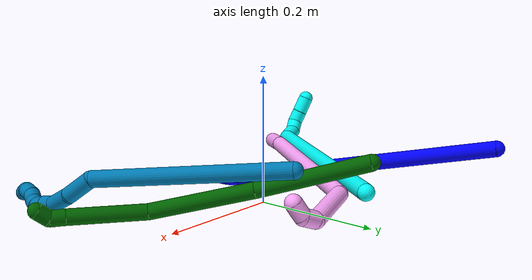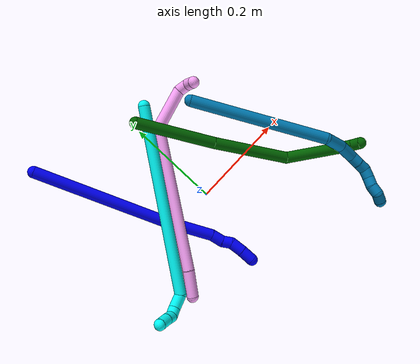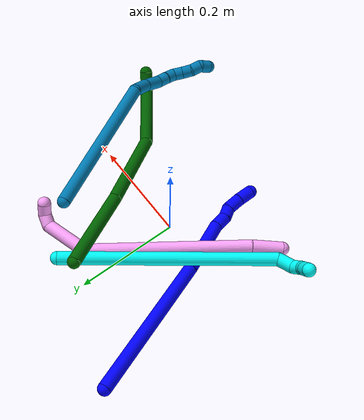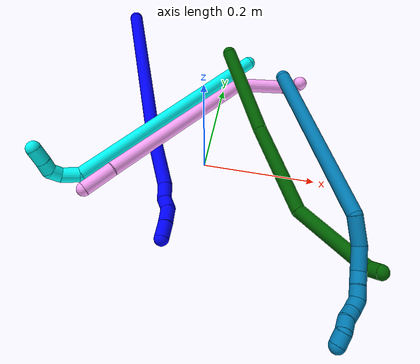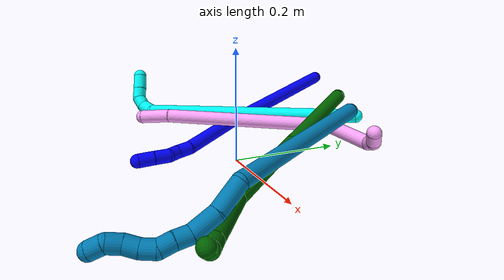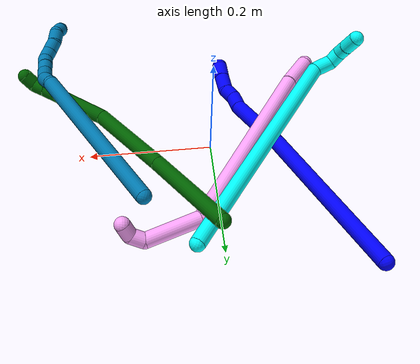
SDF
<sdf version="1.7">
 <world name="default">
  <model name="photoneo_s_sensor">
   <static>1</static>
   <pose>0 0 2 1.57079 1.57079 3.14159</pose>
   <link name="link">
    <inertial><mass>0.1</mass></inertial>
    <sensor name="sensor" type="depth">
     <update_rate>30</update_rate>
     <camera>
      <horizontal_fov>1.22</horizontal_fov>
      <image><width>1920</width><height>1200</height><format>B8G8R8</format></image>
      <clip><near>0.1</near><far>4</far></clip>
      <depth_camera><output>points</output></depth_camera>
     </camera>
     <plugin name="camera_plugin" filename="libgazebo_ros_depth_camera.so">
      <baseline>0.2</baseline>
      <alwaysOn>1</alwaysOn>
      <updateRate>0.0</updateRate>
      <cameraName>camera_ir</cameraName>
      <imageTopicName>/camera/color/image_raw</imageTopicName>
      <cameraInfoTopicName>/camera/color/camera_info</cameraInfoTopicName>
      <depthImageTopicName>/camera/depth/image_raw</depthImageTopicName>
      <depthImageCameraInfoTopicName>/camera/depth/camera_info</depthImageCameraInfoTopicName>
      <pointCloudTopicName>/camera/depth/points</pointCloudTopicName>
      <frameName>fr_optical</frameName>
      <pointCloudCutoff>0.1</pointCloudCutoff>
      <pointCloudCutoffMax>2.0</pointCloudCutoffMax>
      <distortionK1>0</distortionK1>
      <distortionK2>0</distortionK2>
      <distortionK3>0</distortionK3>
      <distortionT1>0</distortionT1>
      <distortionT2>0</distortionT2>
      <CxPrime>0</CxPrime>
      <Cx>0</Cx>
      <Cy>0</Cy>
      <focalLength>0</focalLength>
      <hackBaseline>0</hackBaseline>
     </plugin>
    </sensor>
   </link>
  </model>
  <model name="bin">
   <static>1</static>
   <link name="bottom">
    <collision name="collision-bottom">
     <pose>0 0 -0.01 0 -0 0</pose>
     <geometry><box><size>0.8 0.6 0.02</size></box></geometry>
     <surface>
      <friction><ode><mu>100</mu><mu2>100</mu2></ode></friction>
      <contact><collide_bitmask>65535</collide_bitmask></contact>
     </surface>
    </collision>
   </link>
   <link name="west_wall">
    <collision name="collision-west_wall">
     <pose>-0.41 0 0.1 0 -0 0</pose>
     <geometry><box><size>0.02 0.6 0.2</size></box></geometry>
     <surface>
      <friction><ode><mu>100</mu><mu2>100</mu2></ode></friction>
      <contact><collide_bitmask>65535</collide_bitmask></contact>
     </surface>
    </collision>
   </link>
   <link name="east_wall">
    <collision name="collision-east_wall">
     <pose>0.41 0 0.1 0 -0 0</pose>
     <geometry><box><size>0.02 0.6 0.2</size></box></geometry>
     <surface>
      <friction><ode><mu>100</mu><mu2>100</mu2></ode></friction>
      <contact><collide_bitmask>65535</collide_bitmask></contact>
     </surface>
    </collision>
   </link>
   <link name="south_wall">
    <collision name="collision-south_wall">
     <pose>0 -0.31 0.1 0 -0 0</pose>
     <geometry><box><size>0.8 0.02 0.2</size></box></geometry>
     <surface>
      <friction><ode><mu>100</mu><mu2>100</mu2></ode></friction>
      <contact><collide_bitmask>65535</collide_bitmask></contact>
     </surface>
    </collision>
   </link>
   <link name="north_wall">
    <collision name="collision-north_wall">
     <pose>0 0.31 0.1 0 -0 0</pose>
     <geometry><box><size>0.8 0.02 0.2</size></box></geometry>
     <surface>
      <friction><ode><mu>100</mu><mu2>100</mu2></ode></friction>
      <contact><collide_bitmask>65535</collide_bitmask></contact>
     </surface>
    </collision>
   </link>
  </model>
  <model name="1">
   <static>0</static>
   <link name="1">
    <collision name="collision-cylinder-e_1_1_4">
     <pose>0.044806 -0.124741 -0.049137 1.94604 0.322525 0.469049</pose>
     <geometry><cylinder><radius>0.0125</radius><length>0.282719</length></cylinder></geometry>
     <surface>
      <friction><ode><mu>1.16</mu><mu2>1.16</mu2><slip1>0</slip1><slip2>0</slip2></ode></friction>
      <contact><ode><kp>1e+06</kp><kd>1</kd><max_vel>0</max_vel><min_depth>0.001</min_depth></ode></contact>
     </surface>
    </collision>
    <visual name="visual-cylinder-e_1_1_4">
     <pose>0.044806 -0.124741 -0.049137 1.94604 0.322525 0.469049</pose>
     <geometry><cylinder><radius>0.0125</radius><length>0.282719</length></cylinder></geometry>
     <material><ambient>0 0 1 1</ambient></material>
    </visual>
    <collision name="collision-cylinder-e_2_4_5">
     <pose>0.107243 -0.297546 -0.121761 2.02534 0.318395 0.503411</pose>
     <geometry><cylinder><radius>0.0125</radius><length>0.112651</length></cylinder></geometry>
     <surface>
      <friction><ode><mu>1.16</mu><mu2>1.16</mu2><slip1>0</slip1><slip2>0</slip2></ode></friction>
      <contact><ode><kp>1e+06</kp><kd>1</kd><max_vel>0</max_vel><min_depth>0.001</min_depth></ode></contact>
     </surface>
    </collision>
    <visual name="visual-cylinder-e_2_4_5">
     <pose>0.107243 -0.297546 -0.121761 2.02534 0.318395 0.503411</pose>
     <geometry><cylinder><radius>0.0125</radius><length>0.112651</length></cylinder></geometry>
     <material><ambient>0 0 1 1</ambient></material>
    </visual>
    <collision name="collision-cylinder-e_3_5_6">
     <pose>0.129277 -0.358056 -0.147484 1.74858 0.334919 0.398872</pose>
     <geometry><cylinder><radius>0.0125</radius><length>0.026782</length></cylinder></geometry>
     <surface>
      <friction><ode><mu>1.16</mu><mu2>1.16</mu2><slip1>0</slip1><slip2>0</slip2></ode></friction>
      <contact><ode><kp>1e+06</kp><kd>1</kd><max_vel>0</max_vel><min_depth>0.001</min_depth></ode></contact>
     </surface>
    </collision>
    <visual name="visual-cylinder-e_3_5_6">
     <pose>0.129277 -0.358056 -0.147484 1.74858 0.334919 0.398872</pose>
     <geometry><cylinder><radius>0.0125</radius><length>0.026782</length></cylinder></geometry>
     <material><ambient>0 0 1 1</ambient></material>
    </visual>
    <collision name="collision-cylinder-e_4_6_7">
     <pose>0.138938 -0.378118 -0.154255 2.10787 0.535561 0.899435</pose>
     <geometry><cylinder><radius>0.0125</radius><length>0.02061</length></cylinder></geometry>
     <surface>
      <friction><ode><mu>1.16</mu><mu2>1.16</mu2><slip1>0</slip1><slip2>0</slip2></ode></friction>
      <contact><ode><kp>1e+06</kp><kd>1</kd><max_vel>0</max_vel><min_depth>0.001</min_depth></ode></contact>
     </surface>
    </collision>
    <visual name="visual-cylinder-e_4_6_7">
     <pose>0.138938 -0.378118 -0.154255 2.10787 0.535561 0.899435</pose>
     <geometry><cylinder><radius>0.0125</radius><length>0.02061</length></cylinder></geometry>
     <material><ambient>0 0 1 1</ambient></material>
    </visual>
    <collision name="collision-cylinder-e_5_7_8">
     <pose>0.150076 -0.398813 -0.159052 1.59088 0.422314 0.430623</pose>
     <geometry><cylinder><radius>0.0125</radius><length>0.028687</length></cylinder></geometry>
     <surface>
      <friction><ode><mu>1.16</mu><mu2>1.16</mu2><slip1>0</slip1><slip2>0</slip2></ode></friction>
      <contact><ode><kp>1e+06</kp><kd>1</kd><max_vel>0</max_vel><min_depth>0.001</min_depth></ode></contact>
     </surface>
    </collision>
    <visual name="visual-cylinder-e_5_7_8">
     <pose>0.150076 -0.398813 -0.159052 1.59088 0.422314 0.430623</pose>
     <geometry><cylinder><radius>0.0125</radius><length>0.028687</length></cylinder></geometry>
     <material><ambient>0 0 1 1</ambient></material>
    </visual>
    <collision name="collision-cylinder-e_6_8_2">
     <pose>0.16087 -0.425291 -0.158906 1.54027 0.351476 0.341114</pose>
     <geometry><cylinder><radius>0.0125</radius><length>0.028552</length></cylinder></geometry>
     <surface>
      <friction><ode><mu>1.16</mu><mu2>1.16</mu2><slip1>0</slip1><slip2>0</slip2></ode></friction>
      <contact><ode><kp>1e+06</kp><kd>1</kd><max_vel>0</max_vel><min_depth>0.001</min_depth></ode></contact>
     </surface>
    </collision>
    <visual name="visual-cylinder-e_6_8_2">
     <pose>0.16087 -0.425291 -0.158906 1.54027 0.351476 0.341114</pose>
     <geometry><cylinder><radius>0.0125</radius><length>0.028552</length></cylinder></geometry>
     <material><ambient>0 0 1 1</ambient></material>
    </visual>
    <collision name="collision-sphere-2">
     <pose>0.165784 -0.438688 -0.158496 0 -0 0</pose>
     <geometry><sphere><radius>0.0125</radius></sphere></geometry>
     <surface>
      <friction><ode><mu>1.16</mu><mu2>1.16</mu2><slip1>0</slip1><slip2>0</slip2></ode></friction>
      <contact><ode><kp>1e+06</kp><kd>1</kd><max_vel>0</max_vel><min_depth>0.001</min_depth></ode></contact>
     </surface>
    </collision>
    <visual name="visual-sphere-2">
     <pose>0.165784 -0.438688 -0.158496 0 -0 0</pose>
     <geometry><sphere><radius>0.0125</radius></sphere></geometry>
     <material><ambient>0 0 1 1</ambient></material>
    </visual>
    <collision name="collision-sphere-4">
     <pose>0.089611 -0.249483 -0.098274 0 -0 0</pose>
     <geometry><sphere><radius>0.0125</radius></sphere></geometry>
     <surface>
      <friction><ode><mu>1.16</mu><mu2>1.16</mu2><slip1>0</slip1><slip2>0</slip2></ode></friction>
      <contact><ode><kp>1e+06</kp><kd>1</kd><max_vel>0</max_vel><min_depth>0.001</min_depth></ode></contact>
     </surface>
    </collision>
    <visual name="visual-sphere-4">
     <pose>0.089611 -0.249483 -0.098274 0 -0 0</pose>
     <geometry><sphere><radius>0.0125</radius></sphere></geometry>
     <material><ambient>0 0 1 1</ambient></material>
    </visual>
    <collision name="collision-sphere-1">
     <geometry><sphere><radius>0.0125</radius></sphere></geometry>
     <surface>
      <friction><ode><mu>1.16</mu><mu2>1.16</mu2><slip1>0</slip1><slip2>0</slip2></ode></friction>
      <contact><ode><kp>1e+06</kp><kd>1</kd><max_vel>0</max_vel><min_depth>0.001</min_depth></ode></contact>
     </surface>
    </collision>
    <visual name="visual-sphere-1">
     <geometry><sphere><radius>0.0125</radius></sphere></geometry>
     <material><ambient>0 0 1 1</ambient></material>
    </visual>
    <collision name="collision-sphere-8">
     <pose>0.155955 -0.411894 -0.159315 0 -0 0</pose>
     <geometry><sphere><radius>0.0125</radius></sphere></geometry>
     <surface>
      <friction><ode><mu>1.16</mu><mu2>1.16</mu2><slip1>0</slip1><slip2>0</slip2></ode></friction>
      <contact><ode><kp>1e+06</kp><kd>1</kd><max_vel>0</max_vel><min_depth>0.001</min_depth></ode></contact>
     </surface>
    </collision>
    <visual name="visual-sphere-8">
     <pose>0.155955 -0.411894 -0.159315 0 -0 0</pose>
     <geometry><sphere><radius>0.0125</radius></sphere></geometry>
     <material><ambient>0 0 1 1</ambient></material>
    </visual>
    <collision name="collision-sphere-5">
     <pose>0.124876 -0.345608 -0.145248 0 -0 0</pose>
     <geometry><sphere><radius>0.0125</radius></sphere></geometry>
     <surface>
      <friction><ode><mu>1.16</mu><mu2>1.16</mu2><slip1>0</slip1><slip2>0</slip2></ode></friction>
      <contact><ode><kp>1e+06</kp><kd>1</kd><max_vel>0</max_vel><min_depth>0.001</min_depth></ode></contact>
     </surface>
    </collision>
    <visual name="visual-sphere-5">
     <pose>0.124876 -0.345608 -0.145248 0 -0 0</pose>
     <geometry><sphere><radius>0.0125</radius></sphere></geometry>
     <material><ambient>0 0 1 1</ambient></material>
    </visual>
    <collision name="collision-sphere-6">
     <pose>0.133679 -0.370504 -0.149721 0 -0 0</pose>
     <geometry><sphere><radius>0.0125</radius></sphere></geometry>
     <surface>
      <friction><ode><mu>1.16</mu><mu2>1.16</mu2><slip1>0</slip1><slip2>0</slip2></ode></friction>
      <contact><ode><kp>1e+06</kp><kd>1</kd><max_vel>0</max_vel><min_depth>0.001</min_depth></ode></contact>
     </surface>
    </collision>
    <visual name="visual-sphere-6">
     <pose>0.133679 -0.370504 -0.149721 0 -0 0</pose>
     <geometry><sphere><radius>0.0125</radius></sphere></geometry>
     <material><ambient>0 0 1 1</ambient></material>
    </visual>
    <collision name="collision-sphere-7">
     <pose>0.144196 -0.385732 -0.158789 0 -0 0</pose>
     <geometry><sphere><radius>0.0125</radius></sphere></geometry>
     <surface>
      <friction><ode><mu>1.16</mu><mu2>1.16</mu2><slip1>0</slip1><slip2>0</slip2></ode></friction>
      <contact><ode><kp>1e+06</kp><kd>1</kd><max_vel>0</max_vel><min_depth>0.001</min_depth></ode></contact>
     </surface>
    </collision>
    <visual name="visual-sphere-7">
     <pose>0.144196 -0.385732 -0.158789 0 -0 0</pose>
     <geometry><sphere><radius>0.0125</radius></sphere></geometry>
     <material><ambient>0 0 1 1</ambient></material>
    </visual>
    <inertial>
     <pose>0.079945 -0.219503 -0.087675 0 -0 0</pose>
     <mass>0.5</mass>
     <inertia>
      <ixx>0.002599</ixx>
      <ixy>0</ixy>
      <ixz>0</ixz>
      <iyy>0.000442</iyy>
      <iyz>0</iyz>
      <izz>0.001131</izz>
     </inertia>
    </inertial>
   </link>
   <pose>-0.206307 0.288518 0.093998 0.722694 -0.997491 -0.738272</pose>
  </model>
  <model name="3">
   <static>0</static>
   <link name="3">
    <collision name="collision-cylinder-e_1_1_4">
     <pose>-0.157918 0.092777 -0.081291 -2.29031 -0.907674 1.64394</pose>
     <geometry><cylinder><radius>0.0125</radius><length>0.400768</length></cylinder></geometry>
     <surface>
      <friction><ode><mu>1.16</mu><mu2>1.16</mu2><slip1>0</slip1><slip2>0</slip2></ode></friction>
      <contact><ode><kp>1e+06</kp><kd>1</kd><max_vel>0</max_vel><min_depth>0.001</min_depth></ode></contact>
     </surface>
    </collision>
    <visual name="visual-cylinder-e_1_1_4">
     <pose>-0.157918 0.092777 -0.081291 -2.29031 -0.907674 1.64394</pose>
     <geometry><cylinder><radius>0.0125</radius><length>0.400768</length></cylinder></geometry>
     <material><ambient>0.003922 1 0.996078 1</ambient></material>
    </visual>
    <collision name="collision-cylinder-e_2_4_5">
     <pose>-0.319981 0.196244 -0.172913 -2.33911 -0.27198 0.623987</pose>
     <geometry><cylinder><radius>0.0125</radius><length>0.030866</length></cylinder></geometry>
     <surface>
      <friction><ode><mu>1.16</mu><mu2>1.16</mu2><slip1>0</slip1><slip2>0</slip2></ode></friction>
      <contact><ode><kp>1e+06</kp><kd>1</kd><max_vel>0</max_vel><min_depth>0.001</min_depth></ode></contact>
     </surface>
    </collision>
    <visual name="visual-cylinder-e_2_4_5">
     <pose>-0.319981 0.196244 -0.172913 -2.33911 -0.27198 0.623987</pose>
     <geometry><cylinder><radius>0.0125</radius><length>0.030866</length></cylinder></geometry>
     <material><ambient>0.003922 1 0.996078 1</ambient></material>
    </visual>
    <collision name="collision-cylinder-e_3_5_6">
     <pose>-0.325053 0.217179 -0.185098 -1.74988 -0.088669 0.106131</pose>
     <geometry><cylinder><radius>0.0125</radius><length>0.020907</length></cylinder></geometry>
     <surface>
      <friction><ode><mu>1.16</mu><mu2>1.16</mu2><slip1>0</slip1><slip2>0</slip2></ode></friction>
      <contact><ode><kp>1e+06</kp><kd>1</kd><max_vel>0</max_vel><min_depth>0.001</min_depth></ode></contact>
     </surface>
    </collision>
    <visual name="visual-cylinder-e_3_5_6">
     <pose>-0.325053 0.217179 -0.185098 -1.74988 -0.088669 0.106131</pose>
     <geometry><cylinder><radius>0.0125</radius><length>0.020907</length></cylinder></geometry>
     <material><ambient>0.003922 1 0.996078 1</ambient></material>
    </visual>
    <collision name="collision-cylinder-e_4_6_7">
     <pose>-0.321513 0.236446 -0.186112 -1.47783 0.457916 -0.41844</pose>
     <geometry><cylinder><radius>0.0125</radius><length>0.020201</length></cylinder></geometry>
     <surface>
      <friction><ode><mu>1.16</mu><mu2>1.16</mu2><slip1>0</slip1><slip2>0</slip2></ode></friction>
      <contact><ode><kp>1e+06</kp><kd>1</kd><max_vel>0</max_vel><min_depth>0.001</min_depth></ode></contact>
     </surface>
    </collision>
    <visual name="visual-cylinder-e_4_6_7">
     <pose>-0.321513 0.236446 -0.186112 -1.47783 0.457916 -0.41844</pose>
     <geometry><cylinder><radius>0.0125</radius><length>0.020201</length></cylinder></geometry>
     <material><ambient>0.003922 1 0.996078 1</ambient></material>
    </visual>
    <collision name="collision-cylinder-e_5_7_2">
     <pose>-0.311674 0.25797 -0.184534 -1.51197 0.405271 -0.382682</pose>
     <geometry><cylinder><radius>0.0125</radius><length>0.027258</length></cylinder></geometry>
     <surface>
      <friction><ode><mu>1.16</mu><mu2>1.16</mu2><slip1>0</slip1><slip2>0</slip2></ode></friction>
      <contact><ode><kp>1e+06</kp><kd>1</kd><max_vel>0</max_vel><min_depth>0.001</min_depth></ode></contact>
     </surface>
    </collision>
    <visual name="visual-cylinder-e_5_7_2">
     <pose>-0.311674 0.25797 -0.184534 -1.51197 0.405271 -0.382682</pose>
     <geometry><cylinder><radius>0.0125</radius><length>0.027258</length></cylinder></geometry>
     <material><ambient>0.003922 1 0.996078 1</ambient></material>
    </visual>
    <collision name="collision-sphere-2">
     <pose>-0.306301 0.270473 -0.183798 0 -0 0</pose>
     <geometry><sphere><radius>0.0125</radius></sphere></geometry>
     <surface>
      <friction><ode><mu>1.16</mu><mu2>1.16</mu2><slip1>0</slip1><slip2>0</slip2></ode></friction>
      <contact><ode><kp>1e+06</kp><kd>1</kd><max_vel>0</max_vel><min_depth>0.001</min_depth></ode></contact>
     </surface>
    </collision>
    <visual name="visual-sphere-2">
     <pose>-0.306301 0.270473 -0.183798 0 -0 0</pose>
     <geometry><sphere><radius>0.0125</radius></sphere></geometry>
     <material><ambient>0.003922 1 0.996078 1</ambient></material>
    </visual>
    <collision name="collision-sphere-7">
     <pose>-0.317048 0.245467 -0.185271 0 -0 0</pose>
     <geometry><sphere><radius>0.0125</radius></sphere></geometry>
     <surface>
      <friction><ode><mu>1.16</mu><mu2>1.16</mu2><slip1>0</slip1><slip2>0</slip2></ode></friction>
      <contact><ode><kp>1e+06</kp><kd>1</kd><max_vel>0</max_vel><min_depth>0.001</min_depth></ode></contact>
     </surface>
    </collision>
    <visual name="visual-sphere-7">
     <pose>-0.317048 0.245467 -0.185271 0 -0 0</pose>
     <geometry><sphere><radius>0.0125</radius></sphere></geometry>
     <material><ambient>0.003922 1 0.996078 1</ambient></material>
    </visual>
    <collision name="collision-sphere-6">
     <pose>-0.325978 0.227425 -0.186953 0 -0 0</pose>
     <geometry><sphere><radius>0.0125</radius></sphere></geometry>
     <surface>
      <friction><ode><mu>1.16</mu><mu2>1.16</mu2><slip1>0</slip1><slip2>0</slip2></ode></friction>
      <contact><ode><kp>1e+06</kp><kd>1</kd><max_vel>0</max_vel><min_depth>0.001</min_depth></ode></contact>
     </surface>
    </collision>
    <visual name="visual-sphere-6">
     <pose>-0.325978 0.227425 -0.186953 0 -0 0</pose>
     <geometry><sphere><radius>0.0125</radius></sphere></geometry>
     <material><ambient>0.003922 1 0.996078 1</ambient></material>
    </visual>
    <collision name="collision-sphere-5">
     <pose>-0.324127 0.206933 -0.183244 0 -0 0</pose>
     <geometry><sphere><radius>0.0125</radius></sphere></geometry>
     <surface>
      <friction><ode><mu>1.16</mu><mu2>1.16</mu2><slip1>0</slip1><slip2>0</slip2></ode></friction>
      <contact><ode><kp>1e+06</kp><kd>1</kd><max_vel>0</max_vel><min_depth>0.001</min_depth></ode></contact>
     </surface>
    </collision>
    <visual name="visual-sphere-5">
     <pose>-0.324127 0.206933 -0.183244 0 -0 0</pose>
     <geometry><sphere><radius>0.0125</radius></sphere></geometry>
     <material><ambient>0.003922 1 0.996078 1</ambient></material>
    </visual>
    <collision name="collision-sphere-1">
     <geometry><sphere><radius>0.0125</radius></sphere></geometry>
     <surface>
      <friction><ode><mu>1.16</mu><mu2>1.16</mu2><slip1>0</slip1><slip2>0</slip2></ode></friction>
      <contact><ode><kp>1e+06</kp><kd>1</kd><max_vel>0</max_vel><min_depth>0.001</min_depth></ode></contact>
     </surface>
    </collision>
    <visual name="visual-sphere-1">
     <geometry><sphere><radius>0.0125</radius></sphere></geometry>
     <material><ambient>0.003922 1 0.996078 1</ambient></material>
    </visual>
    <collision name="collision-sphere-4">
     <pose>-0.315835 0.185554 -0.162583 0 -0 0</pose>
     <geometry><sphere><radius>0.0125</radius></sphere></geometry>
     <surface>
      <friction><ode><mu>1.16</mu><mu2>1.16</mu2><slip1>0</slip1><slip2>0</slip2></ode></friction>
      <contact><ode><kp>1e+06</kp><kd>1</kd><max_vel>0</max_vel><min_depth>0.001</min_depth></ode></contact>
     </surface>
    </collision>
    <visual name="visual-sphere-4">
     <pose>-0.315835 0.185554 -0.162583 0 -0 0</pose>
     <geometry><sphere><radius>0.0125</radius></sphere></geometry>
     <material><ambient>0.003922 1 0.996078 1</ambient></material>
    </visual>
    <inertial>
     <pose>-0.189902 0.119176 -0.101151 0 -0 0</pose>
     <mass>0.5</mass>
     <inertia>
      <ixx>0.003046</ixx>
      <ixy>0</ixy>
      <ixz>0</ixz>
      <iyy>0.006763</iyy>
      <iyz>0</iyz>
      <izz>0.001726</izz>
     </inertia>
    </inertial>
   </link>
   <pose>0.046214 0.21968 0.069163 1.01726 -0.26126 1.56939</pose>
  </model>
  <model name="4">
   <static>0</static>
   <link name="4">
    <collision name="collision-cylinder-e_1_1_4">
     <pose>0.005935 0.020909 0.018339 -0.850787 0.210249 -0.095534</pose>
     <geometry><cylinder><radius>0.0125</radius><length>0.056876</length></cylinder></geometry>
     <surface>
      <friction><ode><mu>1.16</mu><mu2>1.16</mu2><slip1>0</slip1><slip2>0</slip2></ode></friction>
      <contact><ode><kp>1e+06</kp><kd>1</kd><max_vel>0</max_vel><min_depth>0.001</min_depth></ode></contact>
     </surface>
    </collision>
    <visual name="visual-cylinder-e_1_1_4">
     <pose>0.005935 0.020909 0.018339 -0.850787 0.210249 -0.095534</pose>
     <geometry><cylinder><radius>0.0125</radius><length>0.056876</length></cylinder></geometry>
     <material><ambient>1 0.65098 0.996078 1</ambient></material>
    </visual>
    <collision name="collision-cylinder-e_2_4_5">
     <pose>0.057676 0.159073 0.123817 -0.931688 0.303838 -0.153637</pose>
     <geometry><cylinder><radius>0.0125</radius><length>0.306203</length></cylinder></geometry>
     <surface>
      <friction><ode><mu>1.16</mu><mu2>1.16</mu2><slip1>0</slip1><slip2>0</slip2></ode></friction>
      <contact><ode><kp>1e+06</kp><kd>1</kd><max_vel>0</max_vel><min_depth>0.001</min_depth></ode></contact>
     </surface>
    </collision>
    <visual name="visual-cylinder-e_2_4_5">
     <pose>0.057676 0.159073 0.123817 -0.931688 0.303838 -0.153637</pose>
     <geometry><cylinder><radius>0.0125</radius><length>0.306203</length></cylinder></geometry>
     <material><ambient>1 0.65098 0.996078 1</ambient></material>
    </visual>
    <collision name="collision-cylinder-e_3_5_6">
     <pose>0.125119 0.284064 0.249843 -0.196391 0.499557 -0.050252</pose>
     <geometry><cylinder><radius>0.0125</radius><length>0.09034</length></cylinder></geometry>
     <surface>
      <friction><ode><mu>1.16</mu><mu2>1.16</mu2><slip1>0</slip1><slip2>0</slip2></ode></friction>
      <contact><ode><kp>1e+06</kp><kd>1</kd><max_vel>0</max_vel><min_depth>0.001</min_depth></ode></contact>
     </surface>
    </collision>
    <visual name="visual-cylinder-e_3_5_6">
     <pose>0.125119 0.284064 0.249843 -0.196391 0.499557 -0.050252</pose>
     <geometry><cylinder><radius>0.0125</radius><length>0.09034</length></cylinder></geometry>
     <material><ambient>1 0.65098 0.996078 1</ambient></material>
    </visual>
    <collision name="collision-cylinder-e_4_6_7">
     <pose>0.146274 0.288555 0.299898 0.282945 -0.041565 -0.005921</pose>
     <geometry><cylinder><radius>0.0125</radius><length>0.023279</length></cylinder></geometry>
     <surface>
      <friction><ode><mu>1.16</mu><mu2>1.16</mu2><slip1>0</slip1><slip2>0</slip2></ode></friction>
      <contact><ode><kp>1e+06</kp><kd>1</kd><max_vel>0</max_vel><min_depth>0.001</min_depth></ode></contact>
     </surface>
    </collision>
    <visual name="visual-cylinder-e_4_6_7">
     <pose>0.146274 0.288555 0.299898 0.282945 -0.041565 -0.005921</pose>
     <geometry><cylinder><radius>0.0125</radius><length>0.023279</length></cylinder></geometry>
     <material><ambient>1 0.65098 0.996078 1</ambient></material>
    </visual>
    <collision name="collision-cylinder-e_5_7_2">
     <pose>0.137888 0.281837 0.318891 0.417451 -0.745418 -0.165252</pose>
     <geometry><cylinder><radius>0.0125</radius><length>0.023302</length></cylinder></geometry>
     <surface>
      <friction><ode><mu>1.16</mu><mu2>1.16</mu2><slip1>0</slip1><slip2>0</slip2></ode></friction>
      <contact><ode><kp>1e+06</kp><kd>1</kd><max_vel>0</max_vel><min_depth>0.001</min_depth></ode></contact>
     </surface>
    </collision>
    <visual name="visual-cylinder-e_5_7_2">
     <pose>0.137888 0.281837 0.318891 0.417451 -0.745418 -0.165252</pose>
     <geometry><cylinder><radius>0.0125</radius><length>0.023302</length></cylinder></geometry>
     <material><ambient>1 0.65098 0.996078 1</ambient></material>
    </visual>
    <collision name="collision-sphere-2">
     <pose>0.129985 0.278366 0.326717 0 -0 0</pose>
     <geometry><sphere><radius>0.0125</radius></sphere></geometry>
     <surface>
      <friction><ode><mu>1.16</mu><mu2>1.16</mu2><slip1>0</slip1><slip2>0</slip2></ode></friction>
      <contact><ode><kp>1e+06</kp><kd>1</kd><max_vel>0</max_vel><min_depth>0.001</min_depth></ode></contact>
     </surface>
    </collision>
    <visual name="visual-sphere-2">
     <pose>0.129985 0.278366 0.326717 0 -0 0</pose>
     <geometry><sphere><radius>0.0125</radius></sphere></geometry>
     <material><ambient>1 0.65098 0.996078 1</ambient></material>
    </visual>
    <collision name="collision-sphere-7">
     <pose>0.14579 0.285308 0.311065 0 -0 0</pose>
     <geometry><sphere><radius>0.0125</radius></sphere></geometry>
     <surface>
      <friction><ode><mu>1.16</mu><mu2>1.16</mu2><slip1>0</slip1><slip2>0</slip2></ode></friction>
      <contact><ode><kp>1e+06</kp><kd>1</kd><max_vel>0</max_vel><min_depth>0.001</min_depth></ode></contact>
     </surface>
    </collision>
    <visual name="visual-sphere-7">
     <pose>0.14579 0.285308 0.311065 0 -0 0</pose>
     <geometry><sphere><radius>0.0125</radius></sphere></geometry>
     <material><ambient>1 0.65098 0.996078 1</ambient></material>
    </visual>
    <collision name="collision-sphere-6">
     <pose>0.146758 0.291801 0.288731 0 -0 0</pose>
     <geometry><sphere><radius>0.0125</radius></sphere></geometry>
     <surface>
      <friction><ode><mu>1.16</mu><mu2>1.16</mu2><slip1>0</slip1><slip2>0</slip2></ode></friction>
      <contact><ode><kp>1e+06</kp><kd>1</kd><max_vel>0</max_vel><min_depth>0.001</min_depth></ode></contact>
     </surface>
    </collision>
    <visual name="visual-sphere-6">
     <pose>0.146758 0.291801 0.288731 0 -0 0</pose>
     <geometry><sphere><radius>0.0125</radius></sphere></geometry>
     <material><ambient>1 0.65098 0.996078 1</ambient></material>
    </visual>
    <collision name="collision-sphere-5">
     <pose>0.103481 0.276328 0.210956 0 -0 0</pose>
     <geometry><sphere><radius>0.0125</radius></sphere></geometry>
     <surface>
      <friction><ode><mu>1.16</mu><mu2>1.16</mu2><slip1>0</slip1><slip2>0</slip2></ode></friction>
      <contact><ode><kp>1e+06</kp><kd>1</kd><max_vel>0</max_vel><min_depth>0.001</min_depth></ode></contact>
     </surface>
    </collision>
    <visual name="visual-sphere-5">
     <pose>0.103481 0.276328 0.210956 0 -0 0</pose>
     <geometry><sphere><radius>0.0125</radius></sphere></geometry>
     <material><ambient>1 0.65098 0.996078 1</ambient></material>
    </visual>
    <collision name="collision-sphere-1">
     <geometry><sphere><radius>0.0125</radius></sphere></geometry>
     <surface>
      <friction><ode><mu>1.16</mu><mu2>1.16</mu2><slip1>0</slip1><slip2>0</slip2></ode></friction>
      <contact><ode><kp>1e+06</kp><kd>1</kd><max_vel>0</max_vel><min_depth>0.001</min_depth></ode></contact>
     </surface>
    </collision>
    <visual name="visual-sphere-1">
     <geometry><sphere><radius>0.0125</radius></sphere></geometry>
     <material><ambient>1 0.65098 0.996078 1</ambient></material>
    </visual>
    <collision name="collision-sphere-4">
     <pose>0.01187 0.041818 0.036678 0 -0 0</pose>
     <geometry><sphere><radius>0.0125</radius></sphere></geometry>
     <surface>
      <friction><ode><mu>1.16</mu><mu2>1.16</mu2><slip1>0</slip1><slip2>0</slip2></ode></friction>
      <contact><ode><kp>1e+06</kp><kd>1</kd><max_vel>0</max_vel><min_depth>0.001</min_depth></ode></contact>
     </surface>
    </collision>
    <visual name="visual-sphere-4">
     <pose>0.01187 0.041818 0.036678 0 -0 0</pose>
     <geometry><sphere><radius>0.0125</radius></sphere></geometry>
     <material><ambient>1 0.65098 0.996078 1</ambient></material>
    </visual>
    <inertial>
     <pose>0.071839 0.177689 0.151878 0 -0 0</pose>
     <mass>0.5</mass>
     <inertia>
      <ixx>0.001999</ixx>
      <ixy>0</ixy>
      <ixz>0</ixz>
      <iyy>0.001251</iyy>
      <iyz>0</iyz>
      <izz>-0.002592</izz>
     </inertia>
    </inertial>
   </link>
   <pose>-0.176896 -0.125869 0.051341 0.257788 1.1996 0.318409</pose>
  </model>
  <model name="6">
   <static>0</static>
   <link name="6">
    <collision name="collision-cylinder-e_1_1_4">
     <pose>0.042642 -0.042574 0.061073 0.608783 0.520163 0.166811</pose>
     <geometry><cylinder><radius>0.0125</radius><length>0.171591</length></cylinder></geometry>
     <surface>
      <friction><ode><mu>1.16</mu><mu2>1.16</mu2><slip1>0</slip1><slip2>0</slip2></ode></friction>
      <contact><ode><kp>1e+06</kp><kd>1</kd><max_vel>0</max_vel><min_depth>0.001</min_depth></ode></contact>
     </surface>
    </collision>
    <visual name="visual-cylinder-e_1_1_4">
     <pose>0.042642 -0.042574 0.061073 0.608783 0.520163 0.166811</pose>
     <geometry><cylinder><radius>0.0125</radius><length>0.171591</length></cylinder></geometry>
     <material><ambient>0 0.392157 0.003922 1</ambient></material>
    </visual>
    <collision name="collision-cylinder-e_2_4_5">
     <pose>0.122035 -0.12866 0.180996 0.636652 0.465353 0.155862</pose>
     <geometry><cylinder><radius>0.0125</radius><length>0.163793</length></cylinder></geometry>
     <surface>
      <friction><ode><mu>1.16</mu><mu2>1.16</mu2><slip1>0</slip1><slip2>0</slip2></ode></friction>
      <contact><ode><kp>1e+06</kp><kd>1</kd><max_vel>0</max_vel><min_depth>0.001</min_depth></ode></contact>
     </surface>
    </collision>
    <visual name="visual-cylinder-e_2_4_5">
     <pose>0.122035 -0.12866 0.180996 0.636652 0.465353 0.155862</pose>
     <geometry><cylinder><radius>0.0125</radius><length>0.163793</length></cylinder></geometry>
     <material><ambient>0 0.392157 0.003922 1</ambient></material>
    </visual>
    <collision name="collision-cylinder-e_3_5_6">
     <pose>0.160862 -0.211747 0.284567 0.724443 0.034769 0.013177</pose>
     <geometry><cylinder><radius>0.0125</radius><length>0.119509</length></cylinder></geometry>
     <surface>
      <friction><ode><mu>1.16</mu><mu2>1.16</mu2><slip1>0</slip1><slip2>0</slip2></ode></friction>
      <contact><ode><kp>1e+06</kp><kd>1</kd><max_vel>0</max_vel><min_depth>0.001</min_depth></ode></contact>
     </surface>
    </collision>
    <visual name="visual-cylinder-e_3_5_6">
     <pose>0.160862 -0.211747 0.284567 0.724443 0.034769 0.013177</pose>
     <geometry><cylinder><radius>0.0125</radius><length>0.119509</length></cylinder></geometry>
     <material><ambient>0 0.392157 0.003922 1</ambient></material>
    </visual>
    <collision name="collision-cylinder-e_4_6_7">
     <pose>0.163095 -0.258658 0.338129 0.692538 0.013588 0.004903</pose>
     <geometry><cylinder><radius>0.0125</radius><length>0.022976</length></cylinder></geometry>
     <surface>
      <friction><ode><mu>1.16</mu><mu2>1.16</mu2><slip1>0</slip1><slip2>0</slip2></ode></friction>
      <contact><ode><kp>1e+06</kp><kd>1</kd><max_vel>0</max_vel><min_depth>0.001</min_depth></ode></contact>
     </surface>
    </collision>
    <visual name="visual-cylinder-e_4_6_7">
     <pose>0.163095 -0.258658 0.338129 0.692538 0.013588 0.004903</pose>
     <geometry><cylinder><radius>0.0125</radius><length>0.022976</length></cylinder></geometry>
     <material><ambient>0 0.392157 0.003922 1</ambient></material>
    </visual>
    <collision name="collision-cylinder-e_5_7_2">
     <pose>0.160309 -0.276251 0.349894 1.29305 -0.269114 -0.203639</pose>
     <geometry><cylinder><radius>0.0125</radius><length>0.022131</length></cylinder></geometry>
     <surface>
      <friction><ode><mu>1.16</mu><mu2>1.16</mu2><slip1>0</slip1><slip2>0</slip2></ode></friction>
      <contact><ode><kp>1e+06</kp><kd>1</kd><max_vel>0</max_vel><min_depth>0.001</min_depth></ode></contact>
     </surface>
    </collision>
    <visual name="visual-cylinder-e_5_7_2">
     <pose>0.160309 -0.276251 0.349894 1.29305 -0.269114 -0.203639</pose>
     <geometry><cylinder><radius>0.0125</radius><length>0.022131</length></cylinder></geometry>
     <material><ambient>0 0.392157 0.003922 1</ambient></material>
    </visual>
    <collision name="collision-sphere-2">
     <pose>0.157367 -0.286509 0.352819 0 -0 0</pose>
     <geometry><sphere><radius>0.0125</radius></sphere></geometry>
     <surface>
      <friction><ode><mu>1.16</mu><mu2>1.16</mu2><slip1>0</slip1><slip2>0</slip2></ode></friction>
      <contact><ode><kp>1e+06</kp><kd>1</kd><max_vel>0</max_vel><min_depth>0.001</min_depth></ode></contact>
     </surface>
    </collision>
    <visual name="visual-sphere-2">
     <pose>0.157367 -0.286509 0.352819 0 -0 0</pose>
     <geometry><sphere><radius>0.0125</radius></sphere></geometry>
     <material><ambient>0 0.392157 0.003922 1</ambient></material>
    </visual>
    <collision name="collision-sphere-7">
     <pose>0.163251 -0.265992 0.346969 0 -0 0</pose>
     <geometry><sphere><radius>0.0125</radius></sphere></geometry>
     <surface>
      <friction><ode><mu>1.16</mu><mu2>1.16</mu2><slip1>0</slip1><slip2>0</slip2></ode></friction>
      <contact><ode><kp>1e+06</kp><kd>1</kd><max_vel>0</max_vel><min_depth>0.001</min_depth></ode></contact>
     </surface>
    </collision>
    <visual name="visual-sphere-7">
     <pose>0.163251 -0.265992 0.346969 0 -0 0</pose>
     <geometry><sphere><radius>0.0125</radius></sphere></geometry>
     <material><ambient>0 0.392157 0.003922 1</ambient></material>
    </visual>
    <collision name="collision-sphere-6">
     <pose>0.162939 -0.251323 0.329288 0 -0 0</pose>
     <geometry><sphere><radius>0.0125</radius></sphere></geometry>
     <surface>
      <friction><ode><mu>1.16</mu><mu2>1.16</mu2><slip1>0</slip1><slip2>0</slip2></ode></friction>
      <contact><ode><kp>1e+06</kp><kd>1</kd><max_vel>0</max_vel><min_depth>0.001</min_depth></ode></contact>
     </surface>
    </collision>
    <visual name="visual-sphere-6">
     <pose>0.162939 -0.251323 0.329288 0 -0 0</pose>
     <geometry><sphere><radius>0.0125</radius></sphere></geometry>
     <material><ambient>0 0.392157 0.003922 1</ambient></material>
    </visual>
    <collision name="collision-sphere-5">
     <pose>0.158785 -0.172171 0.239846 0 -0 0</pose>
     <geometry><sphere><radius>0.0125</radius></sphere></geometry>
     <surface>
      <friction><ode><mu>1.16</mu><mu2>1.16</mu2><slip1>0</slip1><slip2>0</slip2></ode></friction>
      <contact><ode><kp>1e+06</kp><kd>1</kd><max_vel>0</max_vel><min_depth>0.001</min_depth></ode></contact>
     </surface>
    </collision>
    <visual name="visual-sphere-5">
     <pose>0.158785 -0.172171 0.239846 0 -0 0</pose>
     <geometry><sphere><radius>0.0125</radius></sphere></geometry>
     <material><ambient>0 0.392157 0.003922 1</ambient></material>
    </visual>
    <collision name="collision-sphere-1">
     <geometry><sphere><radius>0.0125</radius></sphere></geometry>
     <surface>
      <friction><ode><mu>1.16</mu><mu2>1.16</mu2><slip1>0</slip1><slip2>0</slip2></ode></friction>
      <contact><ode><kp>1e+06</kp><kd>1</kd><max_vel>0</max_vel><min_depth>0.001</min_depth></ode></contact>
     </surface>
    </collision>
    <visual name="visual-sphere-1">
     <geometry><sphere><radius>0.0125</radius></sphere></geometry>
     <material><ambient>0 0.392157 0.003922 1</ambient></material>
    </visual>
    <collision name="collision-sphere-4">
     <pose>0.085284 -0.085149 0.122146 0 -0 0</pose>
     <geometry><sphere><radius>0.0125</radius></sphere></geometry>
     <surface>
      <friction><ode><mu>1.16</mu><mu2>1.16</mu2><slip1>0</slip1><slip2>0</slip2></ode></friction>
      <contact><ode><kp>1e+06</kp><kd>1</kd><max_vel>0</max_vel><min_depth>0.001</min_depth></ode></contact>
     </surface>
    </collision>
    <visual name="visual-sphere-4">
     <pose>0.085284 -0.085149 0.122146 0 -0 0</pose>
     <geometry><sphere><radius>0.0125</radius></sphere></geometry>
     <material><ambient>0 0.392157 0.003922 1</ambient></material>
    </visual>
    <inertial>
     <pose>0.10765 -0.131483 0.179292 0 -0 0</pose>
     <mass>0.5</mass>
     <inertia>
      <ixx>0.000973</ixx>
      <ixy>0</ixy>
      <ixz>0</ixz>
      <iyy>0.000882</iyy>
      <iyz>0</iyz>
      <izz>0.000153</izz>
     </inertia>
    </inertial>
   </link>
   <pose>0.008901 0.204207 0.100545 -2.27623 0.427302 -2.17003</pose>
  </model>
  <model name="9">
   <static>0</static>
   <link name="9">
    <collision name="collision-cylinder-e_1_1_4">
     <pose>0.096755 -0.065501 0.08815 0.639048 0.722227 0.248627</pose>
     <geometry><cylinder><radius>0.0125</radius><length>0.292727</length></cylinder></geometry>
     <surface>
      <friction><ode><mu>1.16</mu><mu2>1.16</mu2><slip1>0</slip1><slip2>0</slip2></ode></friction>
      <contact><ode><kp>1e+06</kp><kd>1</kd><max_vel>0</max_vel><min_depth>0.001</min_depth></ode></contact>
     </surface>
    </collision>
    <visual name="visual-cylinder-e_1_1_4">
     <pose>0.096755 -0.065501 0.08815 0.639048 0.722227 0.248627</pose>
     <geometry><cylinder><radius>0.0125</radius><length>0.292727</length></cylinder></geometry>
     <material><ambient>0 0.490196 0.709804 1</ambient></material>
    </visual>
    <collision name="collision-cylinder-e_2_4_5">
     <pose>0.20138 -0.150906 0.186052 1.11523 0.341213 0.214059</pose>
     <geometry><cylinder><radius>0.0125</radius><length>0.04704</length></cylinder></geometry>
     <surface>
      <friction><ode><mu>1.16</mu><mu2>1.16</mu2><slip1>0</slip1><slip2>0</slip2></ode></friction>
      <contact><ode><kp>1e+06</kp><kd>1</kd><max_vel>0</max_vel><min_depth>0.001</min_depth></ode></contact>
     </surface>
    </collision>
    <visual name="visual-cylinder-e_2_4_5">
     <pose>0.20138 -0.150906 0.186052 1.11523 0.341213 0.214059</pose>
     <geometry><cylinder><radius>0.0125</radius><length>0.04704</length></cylinder></geometry>
     <material><ambient>0 0.490196 0.709804 1</ambient></material>
    </visual>
    <collision name="collision-cylinder-e_3_5_6">
     <pose>0.2131 -0.185424 0.207904 0.879219 0.20018 0.094391</pose>
     <geometry><cylinder><radius>0.0125</radius><length>0.038721</length></cylinder></geometry>
     <surface>
      <friction><ode><mu>1.16</mu><mu2>1.16</mu2><slip1>0</slip1><slip2>0</slip2></ode></friction>
      <contact><ode><kp>1e+06</kp><kd>1</kd><max_vel>0</max_vel><min_depth>0.001</min_depth></ode></contact>
     </surface>
    </collision>
    <visual name="visual-cylinder-e_3_5_6">
     <pose>0.2131 -0.185424 0.207904 0.879219 0.20018 0.094391</pose>
     <geometry><cylinder><radius>0.0125</radius><length>0.038721</length></cylinder></geometry>
     <material><ambient>0 0.490196 0.709804 1</ambient></material>
    </visual>
    <collision name="collision-cylinder-e_4_6_7">
     <pose>0.219461 -0.20511 0.228798 0.523181 0.242502 0.065221</pose>
     <geometry><cylinder><radius>0.0125</radius><length>0.020913</length></cylinder></geometry>
     <surface>
      <friction><ode><mu>1.16</mu><mu2>1.16</mu2><slip1>0</slip1><slip2>0</slip2></ode></friction>
      <contact><ode><kp>1e+06</kp><kd>1</kd><max_vel>0</max_vel><min_depth>0.001</min_depth></ode></contact>
     </surface>
    </collision>
    <visual name="visual-cylinder-e_4_6_7">
     <pose>0.219461 -0.20511 0.228798 0.523181 0.242502 0.065221</pose>
     <geometry><cylinder><radius>0.0125</radius><length>0.020913</length></cylinder></geometry>
     <material><ambient>0 0.490196 0.709804 1</ambient></material>
    </visual>
    <collision name="collision-cylinder-e_5_7_8">
     <pose>0.224416 -0.216297 0.245508 0.657663 0.239593 0.082101</pose>
     <geometry><cylinder><radius>0.0125</radius><length>0.020596</length></cylinder></geometry>
     <surface>
      <friction><ode><mu>1.16</mu><mu2>1.16</mu2><slip1>0</slip1><slip2>0</slip2></ode></friction>
      <contact><ode><kp>1e+06</kp><kd>1</kd><max_vel>0</max_vel><min_depth>0.001</min_depth></ode></contact>
     </surface>
    </collision>
    <visual name="visual-cylinder-e_5_7_8">
     <pose>0.224416 -0.216297 0.245508 0.657663 0.239593 0.082101</pose>
     <geometry><cylinder><radius>0.0125</radius><length>0.020596</length></cylinder></geometry>
     <material><ambient>0 0.490196 0.709804 1</ambient></material>
    </visual>
    <collision name="collision-cylinder-e_6_8_9">
     <pose>0.225896 -0.224379 0.263182 0.198943 -0.096504 -0.009639</pose>
     <geometry><cylinder><radius>0.0125</radius><length>0.02</length></cylinder></geometry>
     <surface>
      <friction><ode><mu>1.16</mu><mu2>1.16</mu2><slip1>0</slip1><slip2>0</slip2></ode></friction>
      <contact><ode><kp>1e+06</kp><kd>1</kd><max_vel>0</max_vel><min_depth>0.001</min_depth></ode></contact>
     </surface>
    </collision>
    <visual name="visual-cylinder-e_6_8_9">
     <pose>0.225896 -0.224379 0.263182 0.198943 -0.096504 -0.009639</pose>
     <geometry><cylinder><radius>0.0125</radius><length>0.02</length></cylinder></geometry>
     <material><ambient>0 0.490196 0.709804 1</ambient></material>
    </visual>
    <collision name="collision-cylinder-e_7_9_10">
     <pose>0.223679 -0.22612 0.282858 -0.022803 -0.125694 0.001435</pose>
     <geometry><cylinder><radius>0.0125</radius><length>0.02</length></cylinder></geometry>
     <surface>
      <friction><ode><mu>1.16</mu><mu2>1.16</mu2><slip1>0</slip1><slip2>0</slip2></ode></friction>
      <contact><ode><kp>1e+06</kp><kd>1</kd><max_vel>0</max_vel><min_depth>0.001</min_depth></ode></contact>
     </surface>
    </collision>
    <visual name="visual-cylinder-e_7_9_10">
     <pose>0.223679 -0.22612 0.282858 -0.022803 -0.125694 0.001435</pose>
     <geometry><cylinder><radius>0.0125</radius><length>0.02</length></cylinder></geometry>
     <material><ambient>0 0.490196 0.709804 1</ambient></material>
    </visual>
    <collision name="collision-cylinder-e_8_10_11">
     <pose>0.223693 -0.227464 0.302571 0.158899 0.127156 0.010137</pose>
     <geometry><cylinder><radius>0.0125</radius><length>0.02</length></cylinder></geometry>
     <surface>
      <friction><ode><mu>1.16</mu><mu2>1.16</mu2><slip1>0</slip1><slip2>0</slip2></ode></friction>
      <contact><ode><kp>1e+06</kp><kd>1</kd><max_vel>0</max_vel><min_depth>0.001</min_depth></ode></contact>
     </surface>
    </collision>
    <visual name="visual-cylinder-e_8_10_11">
     <pose>0.223693 -0.227464 0.302571 0.158899 0.127156 0.010137</pose>
     <geometry><cylinder><radius>0.0125</radius><length>0.02</length></cylinder></geometry>
     <material><ambient>0 0.490196 0.709804 1</ambient></material>
    </visual>
    <collision name="collision-cylinder-e_9_11_2">
     <pose>0.223289 -0.235357 0.319931 0.696233 -0.168066 -0.061115</pose>
     <geometry><cylinder><radius>0.0125</radius><length>0.020001</length></cylinder></geometry>
     <surface>
      <friction><ode><mu>1.16</mu><mu2>1.16</mu2><slip1>0</slip1><slip2>0</slip2></ode></friction>
      <contact><ode><kp>1e+06</kp><kd>1</kd><max_vel>0</max_vel><min_depth>0.001</min_depth></ode></contact>
     </surface>
    </collision>
    <visual name="visual-cylinder-e_9_11_2">
     <pose>0.223289 -0.235357 0.319931 0.696233 -0.168066 -0.061115</pose>
     <geometry><cylinder><radius>0.0125</radius><length>0.020001</length></cylinder></geometry>
     <material><ambient>0 0.490196 0.709804 1</ambient></material>
    </visual>
    <collision name="collision-sphere-2">
     <pose>0.221616 -0.24168 0.327496 0 -0 0</pose>
     <geometry><sphere><radius>0.0125</radius></sphere></geometry>
     <surface>
      <friction><ode><mu>1.16</mu><mu2>1.16</mu2><slip1>0</slip1><slip2>0</slip2></ode></friction>
      <contact><ode><kp>1e+06</kp><kd>1</kd><max_vel>0</max_vel><min_depth>0.001</min_depth></ode></contact>
     </surface>
    </collision>
    <visual name="visual-sphere-2">
     <pose>0.221616 -0.24168 0.327496 0 -0 0</pose>
     <geometry><sphere><radius>0.0125</radius></sphere></geometry>
     <material><ambient>0 0.490196 0.709804 1</ambient></material>
    </visual>
    <collision name="collision-sphere-11">
     <pose>0.224962 -0.229033 0.312366 0 -0 0</pose>
     <geometry><sphere><radius>0.0125</radius></sphere></geometry>
     <surface>
      <friction><ode><mu>1.16</mu><mu2>1.16</mu2><slip1>0</slip1><slip2>0</slip2></ode></friction>
      <contact><ode><kp>1e+06</kp><kd>1</kd><max_vel>0</max_vel><min_depth>0.001</min_depth></ode></contact>
     </surface>
    </collision>
    <visual name="visual-sphere-11">
     <pose>0.224962 -0.229033 0.312366 0 -0 0</pose>
     <geometry><sphere><radius>0.0125</radius></sphere></geometry>
     <material><ambient>0 0.490196 0.709804 1</ambient></material>
    </visual>
    <collision name="collision-sphere-10">
     <pose>0.222425 -0.225894 0.292777 0 -0 0</pose>
     <geometry><sphere><radius>0.0125</radius></sphere></geometry>
     <surface>
      <friction><ode><mu>1.16</mu><mu2>1.16</mu2><slip1>0</slip1><slip2>0</slip2></ode></friction>
      <contact><ode><kp>1e+06</kp><kd>1</kd><max_vel>0</max_vel><min_depth>0.001</min_depth></ode></contact>
     </surface>
    </collision>
    <visual name="visual-sphere-10">
     <pose>0.222425 -0.225894 0.292777 0 -0 0</pose>
     <geometry><sphere><radius>0.0125</radius></sphere></geometry>
     <material><ambient>0 0.490196 0.709804 1</ambient></material>
    </visual>
    <collision name="collision-sphere-9">
     <pose>0.224933 -0.226347 0.27294 0 -0 0</pose>
     <geometry><sphere><radius>0.0125</radius></sphere></geometry>
     <surface>
      <friction><ode><mu>1.16</mu><mu2>1.16</mu2><slip1>0</slip1><slip2>0</slip2></ode></friction>
      <contact><ode><kp>1e+06</kp><kd>1</kd><max_vel>0</max_vel><min_depth>0.001</min_depth></ode></contact>
     </surface>
    </collision>
    <visual name="visual-sphere-9">
     <pose>0.224933 -0.226347 0.27294 0 -0 0</pose>
     <geometry><sphere><radius>0.0125</radius></sphere></geometry>
     <material><ambient>0 0.490196 0.709804 1</ambient></material>
    </visual>
    <collision name="collision-sphere-4">
     <pose>0.19351 -0.131002 0.1763 0 -0 0</pose>
     <geometry><sphere><radius>0.0125</radius></sphere></geometry>
     <surface>
      <friction><ode><mu>1.16</mu><mu2>1.16</mu2><slip1>0</slip1><slip2>0</slip2></ode></friction>
      <contact><ode><kp>1e+06</kp><kd>1</kd><max_vel>0</max_vel><min_depth>0.001</min_depth></ode></contact>
     </surface>
    </collision>
    <visual name="visual-sphere-4">
     <pose>0.19351 -0.131002 0.1763 0 -0 0</pose>
     <geometry><sphere><radius>0.0125</radius></sphere></geometry>
     <material><ambient>0 0.490196 0.709804 1</ambient></material>
    </visual>
    <collision name="collision-sphere-1">
     <geometry><sphere><radius>0.0125</radius></sphere></geometry>
     <surface>
      <friction><ode><mu>1.16</mu><mu2>1.16</mu2><slip1>0</slip1><slip2>0</slip2></ode></friction>
      <contact><ode><kp>1e+06</kp><kd>1</kd><max_vel>0</max_vel><min_depth>0.001</min_depth></ode></contact>
     </surface>
    </collision>
    <visual name="visual-sphere-1">
     <geometry><sphere><radius>0.0125</radius></sphere></geometry>
     <material><ambient>0 0.490196 0.709804 1</ambient></material>
    </visual>
    <collision name="collision-sphere-8">
     <pose>0.22686 -0.222412 0.253425 0 -0 0</pose>
     <geometry><sphere><radius>0.0125</radius></sphere></geometry>
     <surface>
      <friction><ode><mu>1.16</mu><mu2>1.16</mu2><slip1>0</slip1><slip2>0</slip2></ode></friction>
      <contact><ode><kp>1e+06</kp><kd>1</kd><max_vel>0</max_vel><min_depth>0.001</min_depth></ode></contact>
     </surface>
    </collision>
    <visual name="visual-sphere-8">
     <pose>0.22686 -0.222412 0.253425 0 -0 0</pose>
     <geometry><sphere><radius>0.0125</radius></sphere></geometry>
     <material><ambient>0 0.490196 0.709804 1</ambient></material>
    </visual>
    <collision name="collision-sphere-5">
     <pose>0.209251 -0.17081 0.195803 0 -0 0</pose>
     <geometry><sphere><radius>0.0125</radius></sphere></geometry>
     <surface>
      <friction><ode><mu>1.16</mu><mu2>1.16</mu2><slip1>0</slip1><slip2>0</slip2></ode></friction>
      <contact><ode><kp>1e+06</kp><kd>1</kd><max_vel>0</max_vel><min_depth>0.001</min_depth></ode></contact>
     </surface>
    </collision>
    <visual name="visual-sphere-5">
     <pose>0.209251 -0.17081 0.195803 0 -0 0</pose>
     <geometry><sphere><radius>0.0125</radius></sphere></geometry>
     <material><ambient>0 0.490196 0.709804 1</ambient></material>
    </visual>
    <collision name="collision-sphere-6">
     <pose>0.21695 -0.200039 0.220005 0 -0 0</pose>
     <geometry><sphere><radius>0.0125</radius></sphere></geometry>
     <surface>
      <friction><ode><mu>1.16</mu><mu2>1.16</mu2><slip1>0</slip1><slip2>0</slip2></ode></friction>
      <contact><ode><kp>1e+06</kp><kd>1</kd><max_vel>0</max_vel><min_depth>0.001</min_depth></ode></contact>
     </surface>
    </collision>
    <visual name="visual-sphere-6">
     <pose>0.21695 -0.200039 0.220005 0 -0 0</pose>
     <geometry><sphere><radius>0.0125</radius></sphere></geometry>
     <material><ambient>0 0.490196 0.709804 1</ambient></material>
    </visual>
    <collision name="collision-sphere-7">
     <pose>0.221972 -0.210182 0.23759 0 -0 0</pose>
     <geometry><sphere><radius>0.0125</radius></sphere></geometry>
     <surface>
      <friction><ode><mu>1.16</mu><mu2>1.16</mu2><slip1>0</slip1><slip2>0</slip2></ode></friction>
      <contact><ode><kp>1e+06</kp><kd>1</kd><max_vel>0</max_vel><min_depth>0.001</min_depth></ode></contact>
     </surface>
    </collision>
    <visual name="visual-sphere-7">
     <pose>0.221972 -0.210182 0.23759 0 -0 0</pose>
     <geometry><sphere><radius>0.0125</radius></sphere></geometry>
     <material><ambient>0 0.490196 0.709804 1</ambient></material>
    </visual>
    <inertial>
     <pose>0.146381 -0.120927 0.151638 0 -0 0</pose>
     <mass>0.5</mass>
     <inertia>
      <ixx>0.001961</ixx>
      <ixy>0</ixy>
      <ixz>0</ixz>
      <iyy>0.002228</iyy>
      <iyz>0</iyz>
      <izz>-0.000412</izz>
     </inertia>
    </inertial>
   </link>
   <pose>0.117999 0.152915 0.10264 1.29291 -0.240944 -0.296941</pose>
  </model>
 </world>
</sdf>
